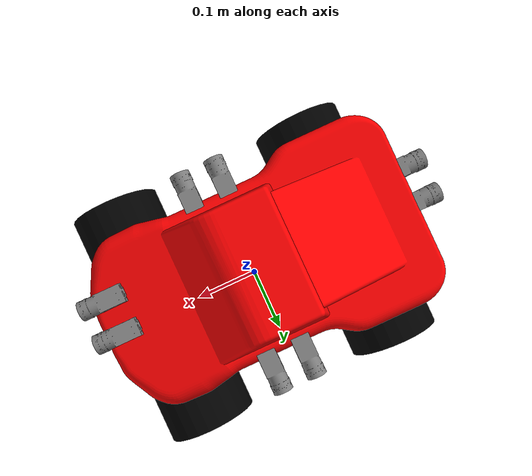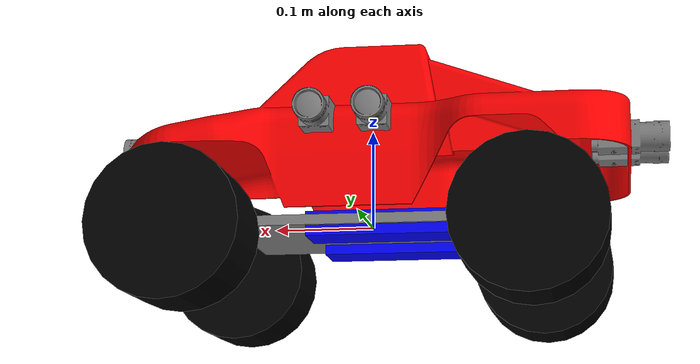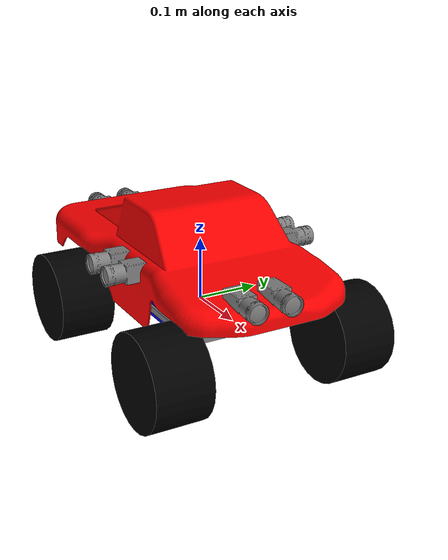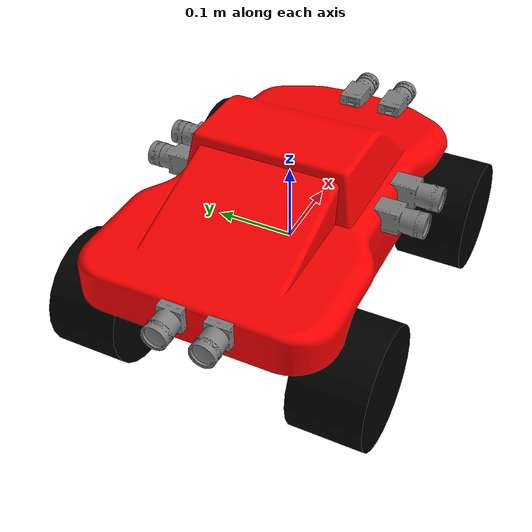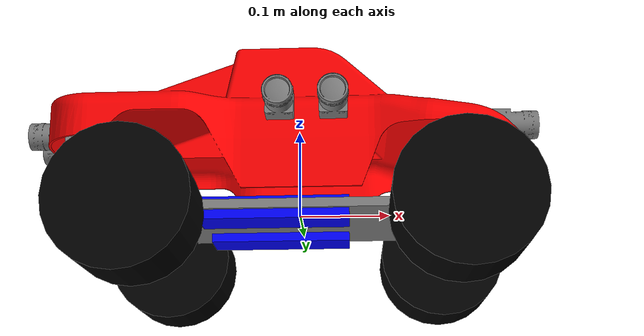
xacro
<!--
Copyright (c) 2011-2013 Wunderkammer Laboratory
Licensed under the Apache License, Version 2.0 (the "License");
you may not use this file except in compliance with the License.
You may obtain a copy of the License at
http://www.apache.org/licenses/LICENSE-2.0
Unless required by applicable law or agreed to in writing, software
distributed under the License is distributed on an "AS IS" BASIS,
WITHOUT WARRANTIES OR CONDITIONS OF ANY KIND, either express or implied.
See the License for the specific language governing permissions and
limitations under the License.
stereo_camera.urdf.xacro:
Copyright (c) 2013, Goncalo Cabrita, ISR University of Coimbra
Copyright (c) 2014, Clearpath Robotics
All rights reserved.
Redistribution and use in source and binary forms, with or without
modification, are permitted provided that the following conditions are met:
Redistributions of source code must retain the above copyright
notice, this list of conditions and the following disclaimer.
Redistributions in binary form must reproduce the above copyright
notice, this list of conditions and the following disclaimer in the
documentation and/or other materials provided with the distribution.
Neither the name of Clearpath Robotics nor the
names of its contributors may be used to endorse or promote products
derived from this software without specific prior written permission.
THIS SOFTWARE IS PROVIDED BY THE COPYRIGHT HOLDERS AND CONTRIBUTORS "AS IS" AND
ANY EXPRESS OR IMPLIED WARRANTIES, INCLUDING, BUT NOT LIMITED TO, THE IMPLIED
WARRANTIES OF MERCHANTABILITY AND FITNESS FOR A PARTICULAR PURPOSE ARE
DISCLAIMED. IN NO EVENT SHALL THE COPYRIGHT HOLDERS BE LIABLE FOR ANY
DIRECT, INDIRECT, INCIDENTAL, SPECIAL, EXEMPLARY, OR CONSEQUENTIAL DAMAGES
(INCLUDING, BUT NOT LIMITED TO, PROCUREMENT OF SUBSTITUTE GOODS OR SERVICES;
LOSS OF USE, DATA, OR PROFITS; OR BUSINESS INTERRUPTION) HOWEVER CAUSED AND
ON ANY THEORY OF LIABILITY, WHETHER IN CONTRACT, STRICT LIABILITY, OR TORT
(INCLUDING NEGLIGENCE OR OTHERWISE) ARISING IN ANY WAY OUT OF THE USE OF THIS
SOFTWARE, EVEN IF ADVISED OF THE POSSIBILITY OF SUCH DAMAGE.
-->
<?xml version="1.0"?>

<robot name="em_3905" xmlns:xacro="http://www.ros.org/wiki/xacro">

  <!-- include files -->
 <xacro:include filename="$(find ackermann_vehicle_description)/urdf/accessories/stereo_camera.urdf.xacro"/>

 <!-- Degree-to-radian conversions -->
  <xacro:property name="degrees_45" value="0.785398163"/>
  <xacro:property name="degrees_90" value="1.57079633"/>

  <xacro:property name="M_PI" value="3.14159"/>

  <xacro:property name="BASE_LINE" value="0.055"/>
  <xacro:property name="OPTICAL_X" value="0"/>
  <xacro:property name="OPTICAL_Y" value="0"/>
  <xacro:property name="OPTICAL_Z" value="0"/>
  <xacro:property name="OPTICAL_A" value="0"/>
  <xacro:property name="OPTICAL_B" value="0"/>
  <xacro:property name="OPTICAL_C" value="0"/>
  <xacro:property name="PIXEL_WIDTH" value="640"/>
  <xacro:property name="PIXEL_HEIGHT" value="480"/>
  <xacro:property name="CAMERA_RATE" value="30.0"/>
  <xacro:property name="CAMERA_FOV" value="1.3962634"/>
  <xacro:property name="CAMERA_DISTORTION_K1" value="0"/>
  <xacro:property name="CAMERA_DISTORTION_K2" value="0"/>
  <xacro:property name="CAMERA_DISTORTION_K3" value="0"/>
  <xacro:property name="CAMERA_DISTORTION_T1" value="0"/>
  <xacro:property name="CAMERA_DISTORTION_T2" value="0"/>

 <!-- User define Stereo_Cam1 -->
  <xacro:property name="STEREO_CAM_X" value="0.26"/>
  <xacro:property name="STEREO_CAM_Y" value="0.00"/>
  <xacro:property name="STEREO_CAM_Z" value="0.085"/>
  <xacro:property name="STEREO_CAM_A" value="0"/>
  <xacro:property name="STEREO_CAM_B" value="0"/>
  <xacro:property name="STEREO_CAM_C" value="0"/>

  <!-- stereo_camera_model&param_macro -->
      <xacro:stereo_camera prefix="basler"/>
 <!-- stereo_camera1_frame_joint -->
       <joint name="stereo_camera_frame_joint" type="fixed">
        <origin xyz="${STEREO_CAM_X} ${STEREO_CAM_Y} ${STEREO_CAM_Z}" rpy="${STEREO_CAM_A} ${STEREO_CAM_B} ${STEREO_CAM_C}" />
        <parent link="base_link"/>
        <child link="stereo_basler"/>
      </joint>

  <xacro:property name="STEREO_CAM2_X" value="0.04"/>
  <xacro:property name="STEREO_CAM2_Y" value="-0.18"/>
  <xacro:property name="STEREO_CAM2_Z" value="0.085"/>
  <xacro:property name="STEREO_CAM2_A" value="0"/>
  <xacro:property name="STEREO_CAM2_B" value="0"/>
  <xacro:property name="STEREO_CAM2_C" value="4.71238633"/>

 <xacro:stereo_camera prefix="basler2"/>
      <joint name="stereo_camera2_frame_joint" type="fixed">
        <origin xyz="${STEREO_CAM2_X} ${STEREO_CAM2_Y} ${STEREO_CAM2_Z}" rpy="${STEREO_CAM2_A} ${STEREO_CAM2_B} ${STEREO_CAM2_C}" />
        <parent link="base_link"/>
        <child link="stereo_basler2"/>
      </joint>

  <xacro:property name="STEREO_CAM3_X" value="-0.3"/>
  <xacro:property name="STEREO_CAM3_Y" value="-0.0485"/>
  <xacro:property name="STEREO_CAM3_Z" value="0.085"/>
  <xacro:property name="STEREO_CAM3_A" value="0"/>
  <xacro:property name="STEREO_CAM3_B" value="0"/>
  <xacro:property name="STEREO_CAM3_C" value="3.14159"/>

      <xacro:stereo_camera prefix="basler3"/>
      <joint name="stereo_camera3_frame_joint" type="fixed">
        <origin xyz="${STEREO_CAM3_X} ${STEREO_CAM3_Y} ${STEREO_CAM3_Z}" rpy="${STEREO_CAM3_A} ${STEREO_CAM3_B} ${STEREO_CAM3_C}" />
        <parent link="base_link"/>
        <child link="stereo_basler3"/>
      </joint>

  <xacro:property name="STEREO_CAM4_X" value="-0.02"/>
  <xacro:property name="STEREO_CAM4_Y" value="0.18"/>
  <xacro:property name="STEREO_CAM4_Z" value="0.085"/>
  <xacro:property name="STEREO_CAM4_A" value="0"/>
  <xacro:property name="STEREO_CAM4_B" value="0"/>
  <xacro:property name="STEREO_CAM4_C" value="1.570795"/>

 <xacro:stereo_camera prefix="basler4"/>
      <joint name="stereo_camera4_frame_joint" type="fixed">
        <origin xyz="${STEREO_CAM4_X} ${STEREO_CAM4_Y} ${STEREO_CAM4_Z}" rpy="${STEREO_CAM4_A} ${STEREO_CAM4_B} ${STEREO_CAM4_C}" />
        <parent link="base_link"/>
        <child link="stereo_basler4"/>
      </joint>

  <!-- chassis_length is measured along the x axis, chassis_width
       along the y axis, and chassis_height along the z axis. -->
  <xacro:property name="chassis_length" value="0.258"/>
  <xacro:property name="chassis_width" value="0.168"/>
  <xacro:property name="chassis_height" value="0.01"/>
  <xacro:property name="chassis_mass" value="2.788"/>

  <xacro:property name="battery_x_offset" value="0.055"/>
  <xacro:property name="battery_dist" value="0.065"/>
  <xacro:property name="battery_comp_depth" value="0.02"/>
  <xacro:property name="battery_comp_angle" value="0.0"/>
  <xacro:property name="battery_length" value="0.16"/>
  <xacro:property name="battery_width" value="0.047"/>
  <xacro:property name="battery_height" value="0.024"/>
  <xacro:property name="battery_mass" value="0.5025"/>

  <xacro:property name="hub_dia" value="0.09652"/>
  <xacro:property name="tire_dia" value="0.14605"/>
  <xacro:property name="tire_width" value="0.0889"/>
  <xacro:property name="hex_hub_depth" value="0.01445"/>
  <xacro:property name="wheel_mass" value="0.29"/>

  <xacro:property name="wheelbase" value="0.335"/>
  <xacro:property name="hex_hub_dist" value="0.365"/>
  <xacro:property name="axle_length" value="0.03"/>
  <xacro:property name="wheel_travel" value="0.084"/>
  <xacro:property name="shock_z_offset" value="0.0655"/>

  <xacro:property name="shock_eff_limit" value="12.5106"/>
  <xacro:property name="shock_vel_limit" value="1000"/>

  <xacro:property name="axle_eff_limit" value="5.12766"/>
  <xacro:property name="axle_vel_limit" value="244.8696"/>

  <!-- These constants are used to simulate a Traxxas 2056 servo operated at
       6 V. servo_stall_torque is measured in N m. servo_no_load_speed is
       measured in rad/s. -->
  <xacro:property name="servo_stall_torque" value="0.5649"/>
  <xacro:property name="servo_no_load_speed" value="4.553"/>

  <!-- ctrl_period is gazebo_ros_control's control period. Unit: hertz. -->
  <xacro:property name="ctrl_period" value="0.01"/>

  <material name="battery_mat">
    <color rgba="0 0 1 1"/>
  </material>
  <material name="chassis_mat">
    <color rgba="0.5 0.5 0.5 1"/>
  </material>
  <material name="body_mat">
    <color rgba="1 0 0 1"/>
  </material>
  <material name="tire_mat">
    <color rgba="0 0 0 1"/>
  </material>

  <!-- Null inertial element. This is needed to make the model work with
       Gazebo. -->
  <xacro:macro name="null_inertial">
    <inertial>
      <mass value="0.001"/>
      <inertia ixx="0.001" ixy="0" ixz="0" iyy="0.001" iyz="0" izz="0.001"/>
    </inertial>
  </xacro:macro>

  <!-- Inertia of a solid cuboid. Width is measured along the x axis, depth
       along the y axis, and height along the z axis. -->
  <xacro:macro name="solid_cuboid_inertial"
               params="width depth height mass *origin">
    <inertial>
      <xacro:insert_block name="origin"/>
      <mass value="${mass}"/>
      <inertia ixx="${mass * (depth * depth + height * height) / 12}"
               ixy="0" ixz="0"
               iyy="${mass * (width * width + height * height) / 12}"
               iyz="0"
               izz="${mass * (width * width + depth * depth) / 12}"/>
    </inertial>
  </xacro:macro>

  <xacro:macro name="thick_walled_tube_inertial"
               params="inner_rad outer_rad height mass">
    <inertial>
      <mass value="${mass}"/>
      <inertia ixx="${(1 / 12) * mass * (3 * (inner_rad * inner_rad +
                    outer_rad * outer_rad) + height * height)}"
               ixy="0" ixz="0"
               iyy="${(1 / 12) * mass * (3 * (inner_rad * inner_rad +
                    outer_rad * outer_rad) + height * height)}"
               iyz="0"
               izz="${mass * (inner_rad * inner_rad +
                    outer_rad * outer_rad) / 2}"/>
    </inertial>
  </xacro:macro>

  <!-- Battery -->
  <xacro:macro name="battery" params="prefix reflect">
    <joint name="chassis_to_${prefix}_battery" type="fixed">
      <parent link="chassis"/>
      <child link="${prefix}_battery_offset"/>
      <origin xyz="${battery_x_offset - battery_length / 2}
                   ${reflect * battery_dist / 2}
                   0"
              rpy="${reflect * battery_comp_angle} 0 0"/>
    </joint>

    <link name="${prefix}_battery_offset">
      <xacro:null_inertial/>
    </link>

    <joint name="offset_to_${prefix}_battery" type="fixed">
      <parent link="${prefix}_battery_offset"/>
      <child link="${prefix}_battery"/>
      <origin xyz="0
                   ${reflect * battery_width / 2}
                   ${(battery_height / 2) - battery_comp_depth}"/>
    </joint>

    <link name="${prefix}_battery">
      <visual>
        <geometry>
          <box size="${battery_length} ${battery_width} ${battery_height}"/>
        </geometry>
        <material name="battery_mat"/>
      </visual>

      <collision>
        <geometry>
          <box size="${battery_length} ${battery_width} ${battery_height}"/>
        </geometry>
      </collision>

      <xacro:solid_cuboid_inertial
         width="${battery_length}" depth="${battery_width}"
         height="${battery_height}" mass="${battery_mass}">
        <origin/>
      </xacro:solid_cuboid_inertial>
    </link>

    <gazebo reference="${prefix}_battery">
      <material>Gazebo/Yellow</material>
    </gazebo>
  </xacro:macro>

  <!-- Shock absorber -->
  <xacro:macro name="shock"
               params="lr_prefix fr_prefix lr_reflect fr_reflect child">
    <joint name="${lr_prefix}_${fr_prefix}_shock" type="prismatic">
      <parent link="chassis"/>
      <child link="${child}"/>

      <origin xyz="${fr_reflect * wheelbase / 2}
                   ${lr_reflect * ((hex_hub_dist / 2) - axle_length)}
                   ${(wheel_travel / 2) - shock_z_offset}"/>
      <axis xyz="0 0 -1"/>
      <limit lower="${-wheel_travel / 2}" upper="${wheel_travel / 2}"
             effort="${shock_eff_limit}" velocity="${shock_vel_limit}"/>
    </joint>
    <transmission name="${lr_prefix}_${fr_prefix}_shock_trans">
      <type>transmission_interface/SimpleTransmission</type>
      <actuator name="${lr_prefix}_${fr_prefix}_shock_act">
      	<mechanicalReduction>1</mechanicalReduction>
      </actuator>
      <joint name="${lr_prefix}_${fr_prefix}_shock">
        <hardwareInterface>EffortJointInterface</hardwareInterface>
      </joint>
    </transmission>
  </xacro:macro>

  <!-- The "wheel" macro defines an axle carrier, axle, and wheel. -->
  <xacro:macro name="wheel" params="lr_prefix fr_prefix lr_reflect">
    <link name="${lr_prefix}_${fr_prefix}_axle_carrier">
      <xacro:null_inertial/>
    </link>

    <!-- The left and right axles have the same axis so that identical
         rotation values cause the wheels to rotate in the same direction. -->
    <joint name="${lr_prefix}_${fr_prefix}_axle" type="continuous">
      <parent link="${lr_prefix}_${fr_prefix}_axle_carrier"/>
      <child link="${lr_prefix}_${fr_prefix}_wheel"/>
      <origin rpy="${degrees_90} 0 0"/>
      <axis xyz="0 0 -1"/>
      <limit effort="${axle_eff_limit}" velocity="${axle_vel_limit}"/>
    </joint>
    <transmission name="${lr_prefix}_${fr_prefix}_axle_trans">
      <type>transmission_interface/SimpleTransmission</type>
      <actuator name="${lr_prefix}_${fr_prefix}_axle_act">
      	<mechanicalReduction>1</mechanicalReduction>
      </actuator>
      <joint name="${lr_prefix}_${fr_prefix}_axle">
        <hardwareInterface>EffortJointInterface</hardwareInterface>
      </joint>
    </transmission>

    <link name="${lr_prefix}_${fr_prefix}_wheel">
      <visual>
        <origin xyz="0
                     ${lr_reflect * (axle_length - (tire_width /
                     2 - hex_hub_depth))}
                     0"/>
        <geometry>
          <cylinder radius="${tire_dia / 2}" length="${tire_width}"/>
        </geometry>
        <material name="tire_mat"/>
      </visual>

      <collision>
        <origin xyz="0
                     ${lr_reflect * (axle_length - (tire_width /
                     2 - hex_hub_depth))}
                     0"/>
        <geometry>
          <cylinder radius="${tire_dia / 2}" length="${tire_width}"/>
        </geometry>
      </collision>

      <xacro:thick_walled_tube_inertial
          inner_rad="${hub_dia / 2}" outer_rad="${tire_dia / 2}"
          height="${tire_width}" mass="${wheel_mass}"/>
    </link>

    <gazebo reference="${lr_prefix}_${fr_prefix}_wheel">
      <material>Gazebo/Black</material>
    </gazebo>
  </xacro:macro>

  <!-- Front wheel -->
  <xacro:macro name="front_wheel"
               params="lr_prefix fr_prefix lr_reflect fr_reflect">
    <xacro:shock lr_prefix="${lr_prefix}" fr_prefix="${fr_prefix}"
                 lr_reflect="${lr_reflect}" fr_reflect="${fr_reflect}"
                 child="${lr_prefix}_steering_link"/>

    <link name="${lr_prefix}_steering_link">
      <xacro:null_inertial/>
    </link>

    <joint name="${lr_prefix}_steering_joint" type="revolute">
      <parent link="${lr_prefix}_steering_link"/>
      <child link="${lr_prefix}_${fr_prefix}_axle_carrier"/>
      <axis xyz="0 0 1"/>
      <limit lower="${-degrees_45}" upper="${degrees_45}"
             effort="${servo_stall_torque}" velocity="${servo_no_load_speed}"/>
    </joint>
    <transmission name="${lr_prefix}_steering_trans">
      <type>transmission_interface/SimpleTransmission</type>
      <actuator name="${lr_prefix}_steering_act">
        <mechanicalReduction>1</mechanicalReduction>
      </actuator>
      <joint name="${lr_prefix}_steering_joint">
        <hardwareInterface>EffortJointInterface</hardwareInterface>
      </joint>
    </transmission>

    <xacro:wheel lr_prefix="${lr_prefix}" fr_prefix="${fr_prefix}"
                 lr_reflect="${lr_reflect}"/>
  </xacro:macro>

  <!-- Rear wheel -->
  <xacro:macro name="rear_wheel"
               params="lr_prefix fr_prefix lr_reflect fr_reflect">
    <xacro:shock lr_prefix="${lr_prefix}" fr_prefix="${fr_prefix}"
                 lr_reflect="${lr_reflect}" fr_reflect="${fr_reflect}"
                 child="${lr_prefix}_${fr_prefix}_axle_carrier"/>
    <xacro:wheel lr_prefix="${lr_prefix}" fr_prefix="${fr_prefix}"
                 lr_reflect="${lr_reflect}"/>
  </xacro:macro>

  <link name="base_link">
    <visual>
      <geometry>
        <box size="0.1 0.1 0.01"/>
      </geometry>
      <material name="chassis_mat"/>
    </visual>
  </link>
  <gazebo reference="base_link">
    <material>Gazebo/Grey</material>
  </gazebo>

  <!-- Chassis -->
  <link name="chassis">
    <visual>
      <origin xyz="0 0 ${-chassis_height / 2}"/>
      <geometry>
        <box size="${chassis_length} ${chassis_width} ${chassis_height}"/>
      </geometry>
      <material name="chassis_mat"/>
    </visual>

    <collision>
      <origin xyz="0 0 ${-chassis_height / 2}"/>
      <geometry>
        <box size="${chassis_length} ${chassis_width} ${chassis_height}"/>
      </geometry>
    </collision>

    <xacro:solid_cuboid_inertial
        width="${chassis_length}" depth="${chassis_width}"
        height="${chassis_height}" mass="${chassis_mass}">
      <origin xyz="0 0 ${-chassis_height / 2}"/>
    </xacro:solid_cuboid_inertial>
  </link>
  <gazebo reference="chassis">
    <material>Gazebo/Grey</material>
  </gazebo>

  <joint name="base_link_to_chasis" type="fixed">
    <parent link="base_link"/>
    <child link="chassis"/>
  </joint>

  <!-- body -->
   <link name="body">
    <visual>
      <origin xyz="0.25 0.15 0.0"
              rpy="1.57 0 -1.57"/>
      <geometry>
          <mesh filename="package://ackermann_vehicle_description/urdf/meshes/body.stl"/>
      </geometry>
      <material name="body_mat"/>
    </visual>
  </link>
  <gazebo reference="body">
    <material>Gazebo/Red</material>
  </gazebo>
  <joint name="chasis_link_to_body" type="fixed">
    <parent link="chassis"/>
    <child link="body"/>
  </joint>

  <!-- Batteries -->
  <xacro:battery prefix="left" reflect="1"/>
  <xacro:battery prefix="right" reflect="-1"/>

  <!-- Wheels -->
  <xacro:front_wheel lr_prefix="left" fr_prefix="front"
                     lr_reflect="1" fr_reflect="1"/>
  <xacro:front_wheel lr_prefix="right" fr_prefix="front"
                     lr_reflect="-1" fr_reflect="1"/>
  <xacro:rear_wheel lr_prefix="left" fr_prefix="rear"
                    lr_reflect="1" fr_reflect="-1"/>
  <xacro:rear_wheel lr_prefix="right" fr_prefix="rear"
                    lr_reflect="-1" fr_reflect="-1"/>

  <gazebo>
    <plugin name="gazebo_ros_control" filename="libgazebo_ros_control.so">
    </plugin>
  </gazebo>
</robot>

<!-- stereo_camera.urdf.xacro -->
<robot xmlns:xacro="http://ros.org/wiki/xacro" name="stereo_camera">

  <xacro:macro name="stereo_camera" params="prefix:=basler">
    <!-- Create stereo_basler model -->
    <link name="stereo_${prefix}">
         <visual>
           <origin xyz="0 -0.015 -0.015"
                   rpy="${M_PI/2} 0 ${M_PI}"/>
           <geometry>
               <mesh filename="package://ackermann_vehicle_description/urdf/meshes/basler.stl"/>
           </geometry>
           <material name="chassis_mat"/>
         </visual>
    </link>

  <joint name="${prefix}_basler_l_to_basler_r" type="fixed">
    <parent link="stereo_${prefix}"/>
    <child link="${prefix}_basler_r"/>
  </joint>

   <link name="${prefix}_basler_r">
    <visual>
      <origin xyz="0 -${BASE_LINE+0.015} -0.015"
              rpy="${M_PI/2} 0 ${M_PI}"/>
      <geometry>
          <mesh filename="package://ackermann_vehicle_description/urdf/meshes/basler.stl"/>
      </geometry>
      <material name="chassis_mat"/>
    </visual>
  </link>

  <!--optical position parameter-->
  <joint name="${prefix}_optical_joint" type="fixed">
    <origin xyz="${OPTICAL_X} ${OPTICAL_Y} ${OPTICAL_Z}" rpy="${OPTICAL_A} ${OPTICAL_B} ${OPTICAL_C}"/>
    <parent link="stereo_${prefix}"/>
    <child link="${prefix}_frame_optical"/>
  </joint>

  <link name="${prefix}_frame_optical"/>

  <!--camera sensor parameter-->
  <gazebo reference="${prefix}_frame_optical">
    <sensor type="multicamera" name="${prefix}_stereo_camera">
      <update_rate>${CAMERA_RATE}</update_rate>
      <camera name="left">
        <pose>0 0 0 0 0 0</pose>
        <horizontal_fov>1.57079633</horizontal_fov>
        <image>
          <width>${PIXEL_WIDTH}</width>
          <height>${PIXEL_HEIGHT}</height>
          <format>R8G8B8</format>
        </image>
        <clip>
          <near>0.02</near>
          <far>300</far>
        </clip>
        <noise>
          <type>gaussian</type>
          <mean>0.0</mean>
          <stddev>0.007</stddev>
        </noise>
      </camera>

      <camera name="right">
        <pose>0 -${BASE_LINE} 0 0 0 0</pose>
        <horizontal_fov>1.57079633</horizontal_fov>
        <image>
          <width>${PIXEL_WIDTH}</width>
          <height>${PIXEL_HEIGHT}</height>
          <format>R8G8B8</format>
        </image>
        <clip>
          <near>0.02</near>
          <far>300</far>
        </clip>
        <noise>
          <type>gaussian</type>
          <mean>0.0</mean>
          <stddev>0.007</stddev>
        </noise>
      </camera>

      <plugin name="stereo_camera_controller" filename="libgazebo_ros_multicamera.so">
        <alwaysOn>true</alwaysOn>
        <updateRate>0.0</updateRate>
        <cameraName>multi/camera/${prefix}</cameraName>
        <imageTopicName>image_raw</imageTopicName>
        <cameraInfoTopicName>camera_info</cameraInfoTopicName>
        <frameName>${prefix}_frame_optical</frameName>
        <foclLength>320.000101</foclLength>
        <hackBaseline>${BASE_LINE}</hackBaseline>
        <distortionK1>${CAMERA_DISTORTION_K1}</distortionK1>
        <distortionK2>${CAMERA_DISTORTION_K2}</distortionK2>
        <distortionK3>${CAMERA_DISTORTION_K3}</distortionK3>
        <distortionT1>${CAMERA_DISTORTION_T1}</distortionT1>
        <distortionT2>${CAMERA_DISTORTION_T2}</distortionT2>
      </plugin>
    </sensor>
  </gazebo>

  </xacro:macro>
</robot>
